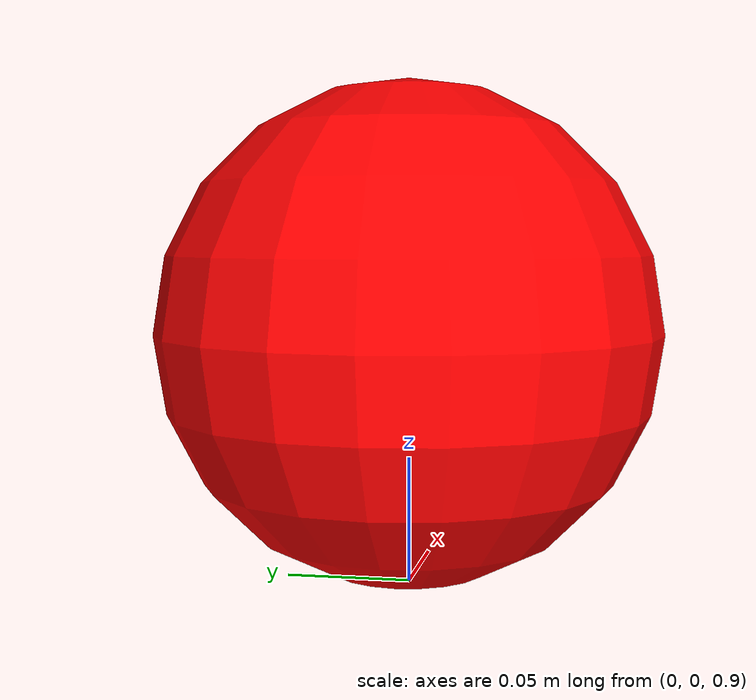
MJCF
<mujoco model="basic_scene">
  <option timestep="0.01" gravity="0 0 -9.81"/>
  <worldbody>
    <!-- Suelo -->
    <geom name="floor" type="plane" size="10 10 0.1" rgba="0.8 0.8 0.8 1"/>
    <!-- Esfera -->
    <body name="ball" pos="0 0 1">
      <geom type="sphere" size="0.1" rgba="1 0 0 1"/>
      <joint type="free"/>
    </body>
    <!-- Rampa -->
    <body name="ramp" pos="0.5 0 0.1">
      <geom name="inclined_ramp" type="box" size="1 0.5 0.1" rgba="0.7 0.7 0.7 1" euler="0.3 0 0"/>
    </body>
  </worldbody>
</mujoco>
